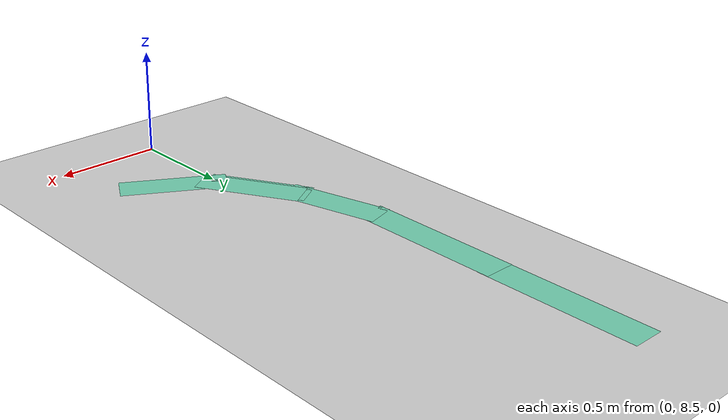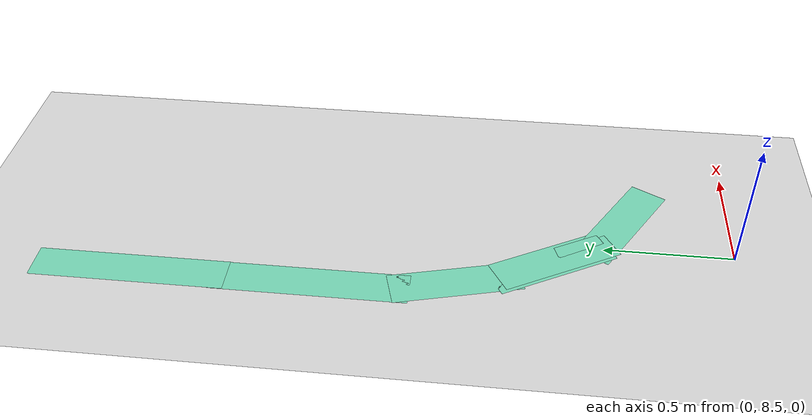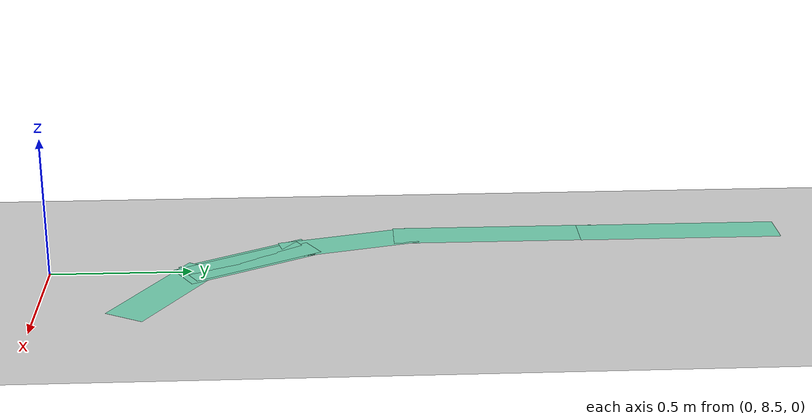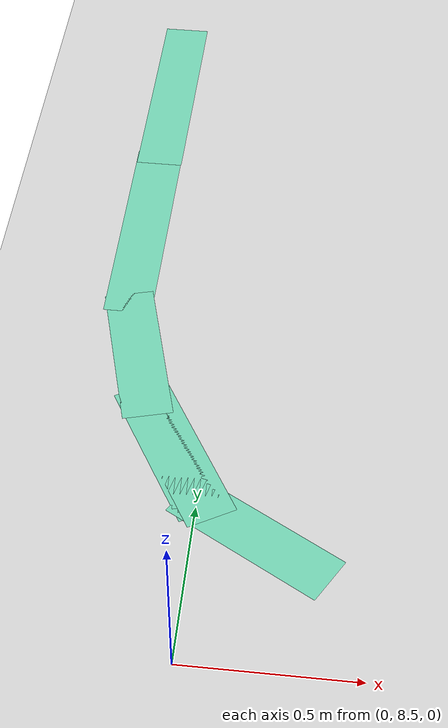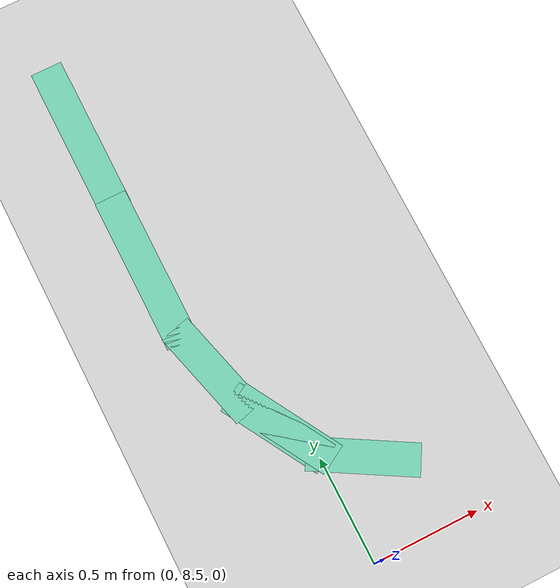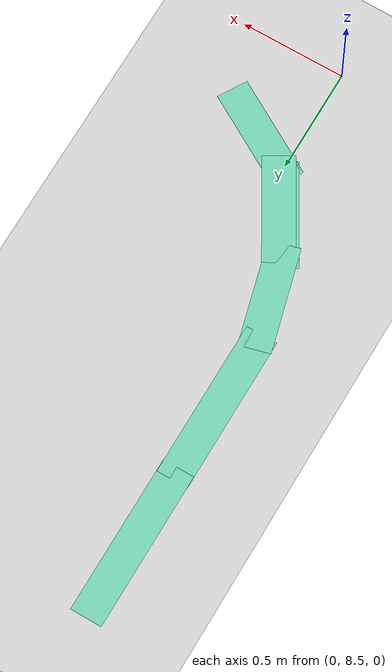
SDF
<sdf version="1.6">
 <world name="default">
  <model name="ground_plane">
   <static>1</static>
   <link name="link">
    <collision name="collision">
     <geometry><plane><normal>0 0 1</normal><size>100 100</size></plane></geometry>
     <surface><friction><ode><mu>100</mu><mu2>50</mu2></ode></friction></surface>
    </collision>
    <visual name="visual">
     <cast_shadows>0</cast_shadows>
     <geometry><plane><normal>0 0 1</normal><size>100 100</size></plane></geometry>
     <material>
      <script><uri>file://media/materials/scripts/gazebo.material</uri><name>Gazebo/Grey</name></script>
     </material>
    </visual>
   </link>
  </model>
  <model name="pomdp_path">
   <link name="Wall_149_clone">
    <pose>-8.42389 0.314285 0 0 -0 2.0944</pose>
    <visual name="Wall_149_Visual">
     <pose>0 0 0.0001 0 -0 0</pose>
     <geometry><box><size>0.5 0.15 0</size></box></geometry>
     <material>
      <script><uri>file://media/materials/scripts/gazebo.material</uri><name>Gazebo/Grey</name></script>
      <ambient>0.435294 0.796078 0.67451 1</ambient>
      <shader type="pixel"/>
     </material>
     <meta><layer>0</layer></meta>
    </visual>
    <collision name="Wall_149_Collision">
     <pose>0 0 0.0001 0 -0 0</pose>
     <geometry><box><size>0.5 0.15 0</size></box></geometry>
     <surface>
      <friction>
       <ode><mu>1</mu><mu2>1</mu2><fdir1>0 0 0</fdir1><slip1>0</slip1><slip2>0</slip2></ode>
       <torsional>
        <coefficient>1</coefficient>
        <patch_radius>0</patch_radius>
        <surface_radius>0</surface_radius>
        <use_patch_radius>1</use_patch_radius>
        <ode><slip>0</slip></ode>
       </torsional>
      </friction>
      <bounce><restitution_coefficient>0</restitution_coefficient><threshold>1e+06</threshold></bounce>
      <contact>
       <collide_without_contact>0</collide_without_contact>
       <collide_without_contact_bitmask>1</collide_without_contact_bitmask>
       <collide_bitmask>1</collide_bitmask>
       <ode>
        <soft_cfm>0</soft_cfm>
        <soft_erp>0.2</soft_erp>
        <kp>1e+13</kp>
        <kd>1</kd>
        <max_vel>0.01</max_vel>
        <min_depth>0</min_depth>
       </ode>
       <bullet>
        <split_impulse>1</split_impulse>
        <split_impulse_penetration_threshold>-0.01</split_impulse_penetration_threshold>
        <soft_cfm>0</soft_cfm>
        <soft_erp>0.2</soft_erp>
        <kp>1e+13</kp>
        <kd>1</kd>
       </bullet>
      </contact>
     </surface>
    </collision>
   </link>
   <link name="Wall_149_clone_clone">
    <pose>-8.39854 0.29823 0 0 0 -1.04719</pose>
    <visual name="Wall_149_Visual">
     <pose>0 0 0.0001 0 -0 0</pose>
     <geometry><box><size>0.5 0.15 0</size></box></geometry>
     <material>
      <script><uri>file://media/materials/scripts/gazebo.material</uri><name>Gazebo/Grey</name></script>
      <ambient>0.435294 0.796078 0.67451 1</ambient>
      <shader type="pixel"/>
     </material>
     <meta><layer>0</layer></meta>
    </visual>
    <collision name="Wall_149_Collision">
     <pose>0 0 0.0001 0 -0 0</pose>
     <geometry><box><size>0.5 0.15 0</size></box></geometry>
     <surface>
      <friction>
       <ode><mu>1</mu><mu2>1</mu2><fdir1>0 0 0</fdir1><slip1>0</slip1><slip2>0</slip2></ode>
       <torsional>
        <coefficient>1</coefficient>
        <patch_radius>0</patch_radius>
        <surface_radius>0</surface_radius>
        <use_patch_radius>1</use_patch_radius>
        <ode><slip>0</slip></ode>
       </torsional>
      </friction>
      <bounce><restitution_coefficient>0</restitution_coefficient><threshold>1e+06</threshold></bounce>
      <contact>
       <collide_without_contact>0</collide_without_contact>
       <collide_without_contact_bitmask>1</collide_without_contact_bitmask>
       <collide_bitmask>1</collide_bitmask>
       <ode>
        <soft_cfm>0</soft_cfm>
        <soft_erp>0.2</soft_erp>
        <kp>1e+13</kp>
        <kd>1</kd>
        <max_vel>0.01</max_vel>
        <min_depth>0</min_depth>
       </ode>
       <bullet>
        <split_impulse>1</split_impulse>
        <split_impulse_penetration_threshold>-0.01</split_impulse_penetration_threshold>
        <soft_cfm>0</soft_cfm>
        <soft_erp>0.2</soft_erp>
        <kp>1e+13</kp>
        <kd>1</kd>
       </bullet>
      </contact>
     </surface>
    </collision>
   </link>
   <link name="Wall_150_clone">
    <pose>-8.25399 -0.05742 0 0 -0 1.8326</pose>
    <visual name="Wall_150_Visual">
     <pose>0 0 0.0001 0 -0 0</pose>
     <geometry><box><size>0.5 0.15 0</size></box></geometry>
     <material>
      <script><uri>file://media/materials/scripts/gazebo.material</uri><name>Gazebo/Grey</name></script>
      <ambient>0.435294 0.796078 0.67451 1</ambient>
      <shader type="pixel"/>
     </material>
     <meta><layer>0</layer></meta>
    </visual>
    <collision name="Wall_150_Collision">
     <pose>0 0 0.0001 0 -0 0</pose>
     <geometry><box><size>0.5 0.15 0</size></box></geometry>
     <surface>
      <friction>
       <ode><mu>1</mu><mu2>1</mu2><fdir1>0 0 0</fdir1><slip1>0</slip1><slip2>0</slip2></ode>
       <torsional>
        <coefficient>1</coefficient>
        <patch_radius>0</patch_radius>
        <surface_radius>0</surface_radius>
        <use_patch_radius>1</use_patch_radius>
        <ode><slip>0</slip></ode>
       </torsional>
      </friction>
      <bounce><restitution_coefficient>0</restitution_coefficient><threshold>1e+06</threshold></bounce>
      <contact>
       <collide_without_contact>0</collide_without_contact>
       <collide_without_contact_bitmask>1</collide_without_contact_bitmask>
       <collide_bitmask>1</collide_bitmask>
       <ode>
        <soft_cfm>0</soft_cfm>
        <soft_erp>0.2</soft_erp>
        <kp>1e+13</kp>
        <kd>1</kd>
        <max_vel>0.01</max_vel>
        <min_depth>0</min_depth>
       </ode>
       <bullet>
        <split_impulse>1</split_impulse>
        <split_impulse_penetration_threshold>-0.01</split_impulse_penetration_threshold>
        <soft_cfm>0</soft_cfm>
        <soft_erp>0.2</soft_erp>
        <kp>1e+13</kp>
        <kd>1</kd>
       </bullet>
      </contact>
     </surface>
    </collision>
   </link>
   <link name="Wall_154_clone">
    <pose>-8.19498 -0.599385 0 0 -0 1.5708</pose>
    <visual name="Wall_154_Visual">
     <pose>0 0 0.0001 0 -0 0</pose>
     <geometry><box><size>0.75 0.15 0</size></box></geometry>
     <material>
      <script><uri>file://media/materials/scripts/gazebo.material</uri><name>Gazebo/Grey</name></script>
      <ambient>0.435294 0.796078 0.67451 1</ambient>
      <shader type="pixel"/>
     </material>
     <meta><layer>0</layer></meta>
    </visual>
    <collision name="Wall_154_Collision">
     <pose>0 0 0.0001 0 -0 0</pose>
     <geometry><box><size>0.75 0.15 0</size></box></geometry>
     <surface>
      <friction>
       <ode><mu>1</mu><mu2>1</mu2><fdir1>0 0 0</fdir1><slip1>0</slip1><slip2>0</slip2></ode>
       <torsional>
        <coefficient>1</coefficient>
        <patch_radius>0</patch_radius>
        <surface_radius>0</surface_radius>
        <use_patch_radius>1</use_patch_radius>
        <ode><slip>0</slip></ode>
       </torsional>
      </friction>
      <bounce><restitution_coefficient>0</restitution_coefficient><threshold>1e+06</threshold></bounce>
      <contact>
       <collide_without_contact>0</collide_without_contact>
       <collide_without_contact_bitmask>1</collide_without_contact_bitmask>
       <collide_bitmask>1</collide_bitmask>
       <ode>
        <soft_cfm>0</soft_cfm>
        <soft_erp>0.2</soft_erp>
        <kp>1e+13</kp>
        <kd>1</kd>
        <max_vel>0.01</max_vel>
        <min_depth>0</min_depth>
       </ode>
       <bullet>
        <split_impulse>1</split_impulse>
        <split_impulse_penetration_threshold>-0.01</split_impulse_penetration_threshold>
        <soft_cfm>0</soft_cfm>
        <soft_erp>0.2</soft_erp>
        <kp>1e+13</kp>
        <kd>1</kd>
       </bullet>
      </contact>
     </surface>
    </collision>
   </link>
   <link name="Wall_156_clone">
    <pose>-8.19671 -1.29244 0 0 -0 1.5708</pose>
    <visual name="Wall_156_Visual">
     <pose>0 0 0.0001 0 -0 0</pose>
     <geometry><box><size>0.75 0.15 0</size></box></geometry>
     <material>
      <script><uri>file://media/materials/scripts/gazebo.material</uri><name>Gazebo/Grey</name></script>
      <ambient>0.435294 0.796078 0.67451 1</ambient>
      <shader type="pixel"/>
     </material>
     <meta><layer>0</layer></meta>
    </visual>
    <collision name="Wall_156_Collision">
     <pose>0 0 0.0001 0 -0 0</pose>
     <geometry><box><size>0.75 0.15 0</size></box></geometry>
     <surface>
      <friction>
       <ode><mu>1</mu><mu2>1</mu2><fdir1>0 0 0</fdir1><slip1>0</slip1><slip2>0</slip2></ode>
       <torsional>
        <coefficient>1</coefficient>
        <patch_radius>0</patch_radius>
        <surface_radius>0</surface_radius>
        <use_patch_radius>1</use_patch_radius>
        <ode><slip>0</slip></ode>
       </torsional>
      </friction>
      <bounce><restitution_coefficient>0</restitution_coefficient><threshold>1e+06</threshold></bounce>
      <contact>
       <collide_without_contact>0</collide_without_contact>
       <collide_without_contact_bitmask>1</collide_without_contact_bitmask>
       <collide_bitmask>1</collide_bitmask>
       <ode>
        <soft_cfm>0</soft_cfm>
        <soft_erp>0.2</soft_erp>
        <kp>1e+13</kp>
        <kd>1</kd>
        <max_vel>0.01</max_vel>
        <min_depth>0</min_depth>
       </ode>
       <bullet>
        <split_impulse>1</split_impulse>
        <split_impulse_penetration_threshold>-0.01</split_impulse_penetration_threshold>
        <soft_cfm>0</soft_cfm>
        <soft_erp>0.2</soft_erp>
        <kp>1e+13</kp>
        <kd>1</kd>
       </bullet>
      </contact>
     </surface>
    </collision>
   </link>
   <link name="Wall_161_clone_clone">
    <pose>-8.67118 0.576538 0 0 0 -0.523589</pose>
    <visual name="Wall_161_Visual">
     <pose>0 0 0.0001 0 -0 0</pose>
     <geometry><box><size>0.5 0.15 0</size></box></geometry>
     <material>
      <script><uri>file://media/materials/scripts/gazebo.material</uri><name>Gazebo/Grey</name></script>
      <ambient>0.435294 0.796078 0.67451 1</ambient>
      <shader type="pixel"/>
     </material>
     <meta><layer>0</layer></meta>
    </visual>
    <collision name="Wall_161_Collision">
     <pose>0 0 0.0001 0 -0 0</pose>
     <geometry><box><size>0.5 0.15 0</size></box></geometry>
     <surface>
      <friction>
       <ode><mu>1</mu><mu2>1</mu2><fdir1>0 0 0</fdir1><slip1>0</slip1><slip2>0</slip2></ode>
       <torsional>
        <coefficient>1</coefficient>
        <patch_radius>0</patch_radius>
        <surface_radius>0</surface_radius>
        <use_patch_radius>1</use_patch_radius>
        <ode><slip>0</slip></ode>
       </torsional>
      </friction>
      <bounce><restitution_coefficient>0</restitution_coefficient><threshold>1e+06</threshold></bounce>
      <contact>
       <collide_without_contact>0</collide_without_contact>
       <collide_without_contact_bitmask>1</collide_without_contact_bitmask>
       <collide_bitmask>1</collide_bitmask>
       <ode>
        <soft_cfm>0</soft_cfm>
        <soft_erp>0.2</soft_erp>
        <kp>1e+13</kp>
        <kd>1</kd>
        <max_vel>0.01</max_vel>
        <min_depth>0</min_depth>
       </ode>
       <bullet>
        <split_impulse>1</split_impulse>
        <split_impulse_penetration_threshold>-0.01</split_impulse_penetration_threshold>
        <soft_cfm>0</soft_cfm>
        <soft_erp>0.2</soft_erp>
        <kp>1e+13</kp>
        <kd>1</kd>
       </bullet>
      </contact>
     </surface>
    </collision>
   </link>
   <static>1</static>
   <pose>-8.49995 9.50005 0 0 -0 3.14159</pose>
  </model>
 </world>
</sdf>
